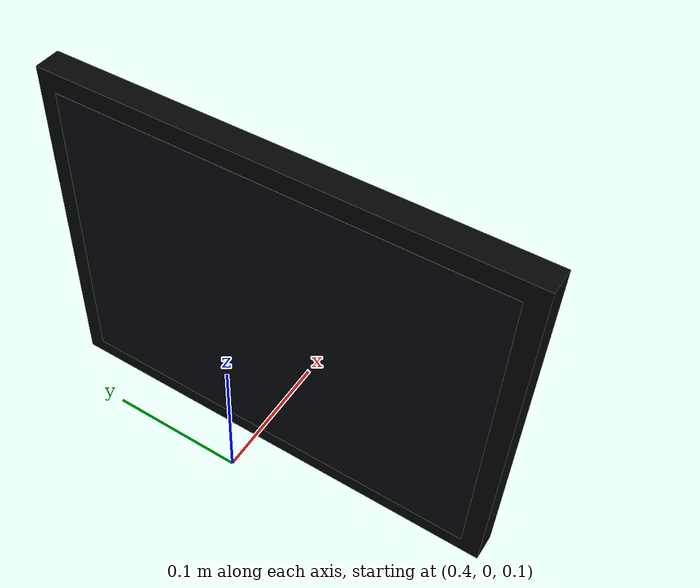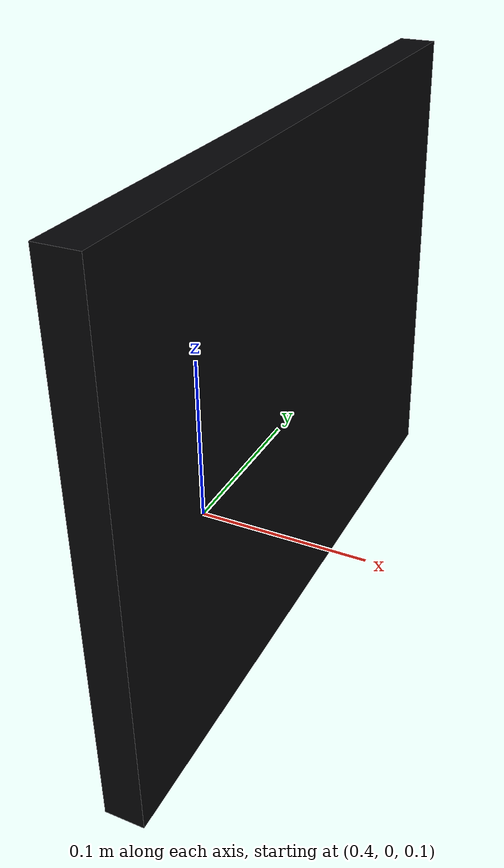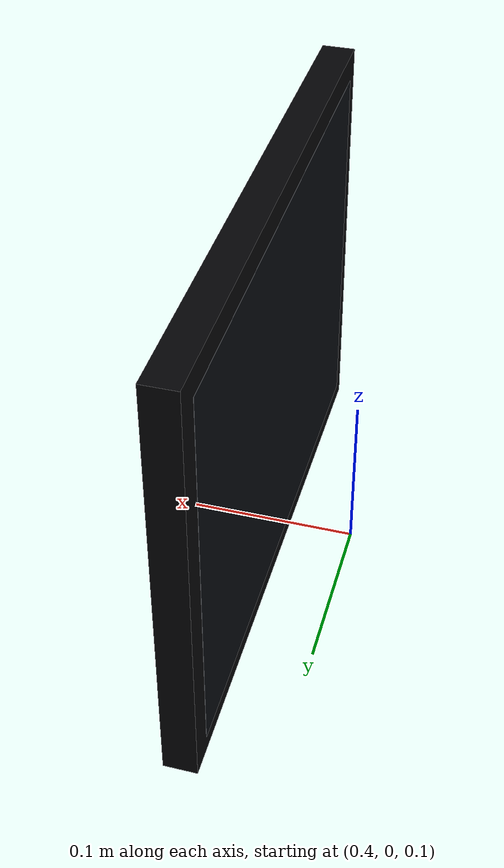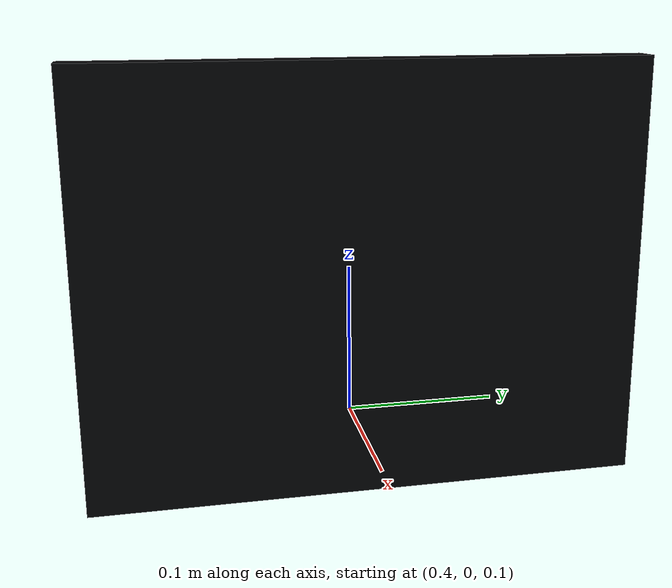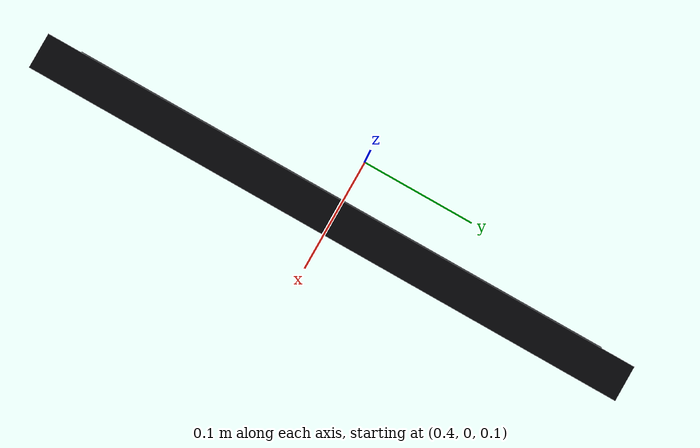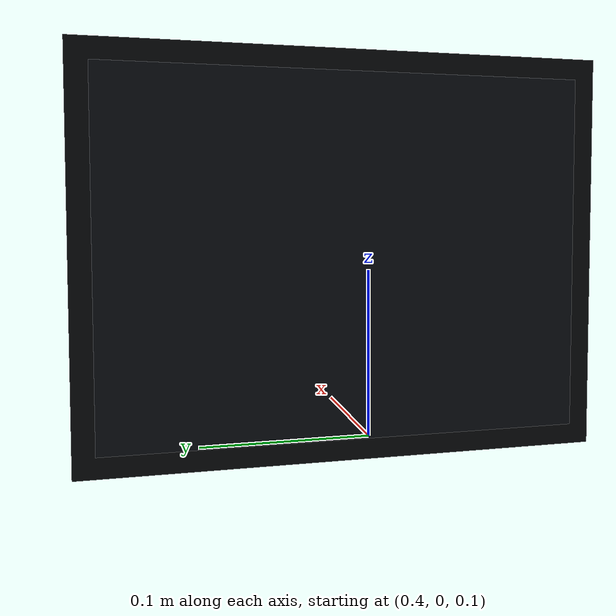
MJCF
<mujoco model="microduck_mario_monitor">
    <compiler angle="radian" autolimits="true"/>

    <asset>
        <texture name="mario_screen_texture" type="2d" builtin="flat"
                 rgb1="0.025 0.035 0.055" width="256" height="240"/>
        <material name="mario_screen_material" texture="mario_screen_texture"
                  texuniform="false" emission="0.35" specular="0" shininess="0"/>
    </asset>

    <worldbody>
        <body name="mario_monitor" pos="0.45 0 0.205">
            <!-- Dark enclosure behind the image plane. -->
            <geom name="mario_monitor_case" type="box" pos="0.006 0 0"
                  size="0.010 0.174 0.134" rgba="0.015 0.018 0.024 1"
                  contype="0" conaffinity="0"/>

            <geom name="mario_monitor_screen" type="plane" pos="-0.005 0 0"
                  size="0.160 0.120 0.001" quat="0.5 0.5 -0.5 -0.5"
                  material="mario_screen_material" contype="0" conaffinity="0"/>
        </body>
    </worldbody>
</mujoco>
